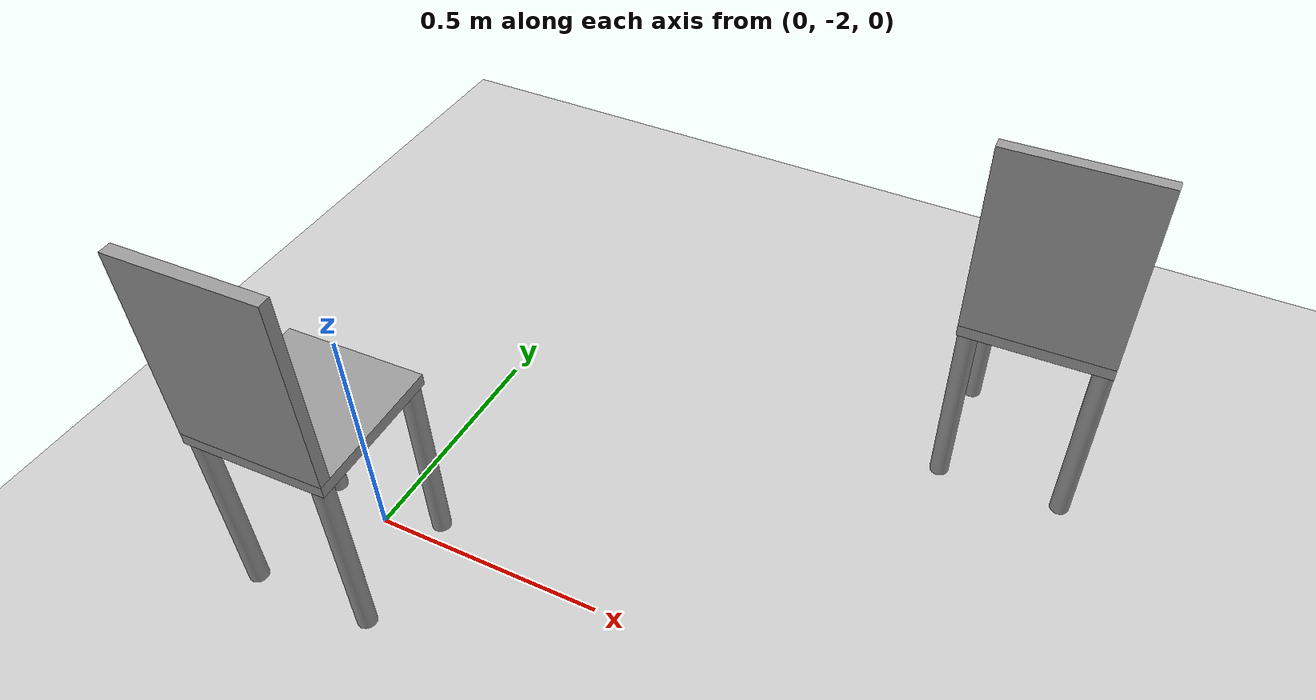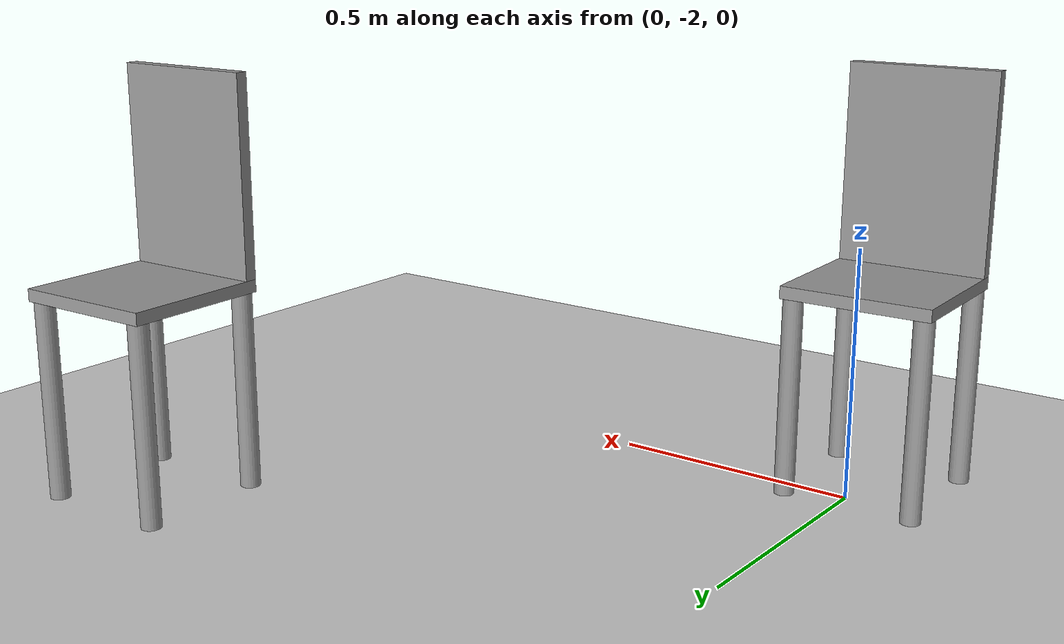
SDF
<sdf version="1.6">
 <world name="default">
  <model name="ground_plane">
   <static>1</static>
   <link name="link">
    <collision name="collision">
     <geometry><plane><normal>0 0 1</normal><size>100 100</size></plane></geometry>
     <surface><friction><ode><mu>100</mu><mu2>50</mu2></ode></friction></surface>
    </collision>
    <visual name="visual">
     <cast_shadows>0</cast_shadows>
     <geometry><plane><normal>0 0 1</normal><size>100 100</size></plane></geometry>
     <material>
      <script><uri>file://media/materials/scripts/gazebo.material</uri><name>Gazebo/Grey</name></script>
     </material>
    </visual>
   </link>
  </model>
  <model name="myChair_clone_clone_0">
   <link name="link_0">
    <pose>0.022917 -0 0.0914 0 -0 0</pose>
    <inertial>
     <mass>1</mass>
     <inertia>
      <ixx>0.166667</ixx>
      <ixy>0</ixy>
      <ixz>0</ixz>
      <iyy>0.166667</iyy>
      <iyz>0</iyz>
      <izz>0.166667</izz>
     </inertia>
    </inertial>
    <visual name="visual">
     <geometry><box><size>0.3 0.3 0.025</size></box></geometry>
     <material>
      <lighting>1</lighting>
      <script><uri>file://media/materials/scripts/gazebo.material</uri><name>Gazebo/Grey</name></script>
      <ambient>0.3 0.3 0.3 1</ambient>
      <diffuse>0.7 0.7 0.7 1</diffuse>
      <specular>0.01 0.01 0.01 1</specular>
      <emissive>0 0 0 1</emissive>
      <shader type="vertex"><normal_map>__default__</normal_map></shader>
     </material>
    </visual>
    <collision name="collision">
     <geometry><box><size>0.3 0.3 0.025</size></box></geometry>
     <surface>
      <friction>
       <ode><mu>1</mu><mu2>1</mu2><fdir1>0 0 0</fdir1><slip1>0</slip1><slip2>0</slip2></ode>
       <torsional>
        <coefficient>1</coefficient>
        <patch_radius>0</patch_radius>
        <surface_radius>0</surface_radius>
        <use_patch_radius>1</use_patch_radius>
        <ode><slip>0</slip></ode>
       </torsional>
      </friction>
      <bounce><restitution_coefficient>0</restitution_coefficient><threshold>1e+06</threshold></bounce>
      <contact>
       <collide_without_contact>0</collide_without_contact>
       <collide_without_contact_bitmask>1</collide_without_contact_bitmask>
       <collide_bitmask>1</collide_bitmask>
       <ode>
        <soft_cfm>0</soft_cfm>
        <soft_erp>0.2</soft_erp>
        <kp>1e+13</kp>
        <kd>1</kd>
        <max_vel>0.01</max_vel>
        <min_depth>0</min_depth>
       </ode>
       <bullet>
        <split_impulse>1</split_impulse>
        <split_impulse_penetration_threshold>-0.01</split_impulse_penetration_threshold>
        <soft_cfm>0</soft_cfm>
        <soft_erp>0.2</soft_erp>
        <kp>1e+13</kp>
        <kd>1</kd>
       </bullet>
      </contact>
     </surface>
    </collision>
   </link>
   <link name="link_1">
    <pose>-0.107083 -0.13 -0.11875 0 -0 0</pose>
    <inertial>
     <mass>1</mass>
     <inertia><ixx>0.145833</ixx><ixy>0</ixy><ixz>0</ixz><iyy>0.145833</iyy><iyz>0</iyz><izz>0.125</izz></inertia>
    </inertial>
    <visual name="visual">
     <geometry><cylinder><radius>0.02</radius><length>0.4</length></cylinder></geometry>
     <material>
      <lighting>1</lighting>
      <script><uri>file://media/materials/scripts/gazebo.material</uri><name>Gazebo/Grey</name></script>
      <ambient>0.3 0.3 0.3 1</ambient>
      <diffuse>0.7 0.7 0.7 1</diffuse>
      <specular>0.01 0.01 0.01 1</specular>
      <emissive>0 0 0 1</emissive>
      <shader type="vertex"><normal_map>__default__</normal_map></shader>
     </material>
    </visual>
    <collision name="collision">
     <geometry><cylinder><radius>0.02</radius><length>0.4</length></cylinder></geometry>
     <surface>
      <friction>
       <ode><mu>1</mu><mu2>1</mu2><fdir1>0 0 0</fdir1><slip1>0</slip1><slip2>0</slip2></ode>
       <torsional>
        <coefficient>1</coefficient>
        <patch_radius>0</patch_radius>
        <surface_radius>0</surface_radius>
        <use_patch_radius>1</use_patch_radius>
        <ode><slip>0</slip></ode>
       </torsional>
      </friction>
      <bounce><restitution_coefficient>0</restitution_coefficient><threshold>1e+06</threshold></bounce>
      <contact>
       <collide_without_contact>0</collide_without_contact>
       <collide_without_contact_bitmask>1</collide_without_contact_bitmask>
       <collide_bitmask>1</collide_bitmask>
       <ode>
        <soft_cfm>0</soft_cfm>
        <soft_erp>0.2</soft_erp>
        <kp>1e+13</kp>
        <kd>1</kd>
        <max_vel>0.01</max_vel>
        <min_depth>0</min_depth>
       </ode>
       <bullet>
        <split_impulse>1</split_impulse>
        <split_impulse_penetration_threshold>-0.01</split_impulse_penetration_threshold>
        <soft_cfm>0</soft_cfm>
        <soft_erp>0.2</soft_erp>
        <kp>1e+13</kp>
        <kd>1</kd>
       </bullet>
      </contact>
     </surface>
    </collision>
   </link>
   <link name="link_1_clone">
    <pose>-0.107083 0.13 -0.11875 0 -0 0</pose>
    <inertial>
     <mass>1</mass>
     <inertia><ixx>0.145833</ixx><ixy>0</ixy><ixz>0</ixz><iyy>0.145833</iyy><iyz>0</iyz><izz>0.125</izz></inertia>
    </inertial>
    <visual name="visual">
     <geometry><cylinder><radius>0.02</radius><length>0.4</length></cylinder></geometry>
     <material>
      <lighting>1</lighting>
      <script><uri>file://media/materials/scripts/gazebo.material</uri><name>Gazebo/Grey</name></script>
      <ambient>0.3 0.3 0.3 1</ambient>
      <diffuse>0.7 0.7 0.7 1</diffuse>
      <specular>0.01 0.01 0.01 1</specular>
      <emissive>0 0 0 1</emissive>
      <shader type="vertex"><normal_map>__default__</normal_map></shader>
     </material>
    </visual>
    <collision name="collision">
     <geometry><cylinder><radius>0.02</radius><length>0.4</length></cylinder></geometry>
     <surface>
      <friction>
       <ode><mu>1</mu><mu2>1</mu2><fdir1>0 0 0</fdir1><slip1>0</slip1><slip2>0</slip2></ode>
       <torsional>
        <coefficient>1</coefficient>
        <patch_radius>0</patch_radius>
        <surface_radius>0</surface_radius>
        <use_patch_radius>1</use_patch_radius>
        <ode><slip>0</slip></ode>
       </torsional>
      </friction>
      <bounce><restitution_coefficient>0</restitution_coefficient><threshold>1e+06</threshold></bounce>
      <contact>
       <collide_without_contact>0</collide_without_contact>
       <collide_without_contact_bitmask>1</collide_without_contact_bitmask>
       <collide_bitmask>1</collide_bitmask>
       <ode>
        <soft_cfm>0</soft_cfm>
        <soft_erp>0.2</soft_erp>
        <kp>1e+13</kp>
        <kd>1</kd>
        <max_vel>0.01</max_vel>
        <min_depth>0</min_depth>
       </ode>
       <bullet>
        <split_impulse>1</split_impulse>
        <split_impulse_penetration_threshold>-0.01</split_impulse_penetration_threshold>
        <soft_cfm>0</soft_cfm>
        <soft_erp>0.2</soft_erp>
        <kp>1e+13</kp>
        <kd>1</kd>
       </bullet>
      </contact>
     </surface>
    </collision>
   </link>
   <link name="link_1_clone_0">
    <pose>0.152917 -0.13 -0.11875 0 -0 0</pose>
    <inertial>
     <mass>1</mass>
     <inertia><ixx>0.145833</ixx><ixy>0</ixy><ixz>0</ixz><iyy>0.145833</iyy><iyz>0</iyz><izz>0.125</izz></inertia>
    </inertial>
    <visual name="visual">
     <geometry><cylinder><radius>0.02</radius><length>0.4</length></cylinder></geometry>
     <material>
      <lighting>1</lighting>
      <script><uri>file://media/materials/scripts/gazebo.material</uri><name>Gazebo/Grey</name></script>
      <ambient>0.3 0.3 0.3 1</ambient>
      <diffuse>0.7 0.7 0.7 1</diffuse>
      <specular>0.01 0.01 0.01 1</specular>
      <emissive>0 0 0 1</emissive>
      <shader type="vertex"><normal_map>__default__</normal_map></shader>
     </material>
    </visual>
    <collision name="collision">
     <geometry><cylinder><radius>0.02</radius><length>0.4</length></cylinder></geometry>
     <surface>
      <friction>
       <ode><mu>1</mu><mu2>1</mu2><fdir1>0 0 0</fdir1><slip1>0</slip1><slip2>0</slip2></ode>
       <torsional>
        <coefficient>1</coefficient>
        <patch_radius>0</patch_radius>
        <surface_radius>0</surface_radius>
        <use_patch_radius>1</use_patch_radius>
        <ode><slip>0</slip></ode>
       </torsional>
      </friction>
      <bounce><restitution_coefficient>0</restitution_coefficient><threshold>1e+06</threshold></bounce>
      <contact>
       <collide_without_contact>0</collide_without_contact>
       <collide_without_contact_bitmask>1</collide_without_contact_bitmask>
       <collide_bitmask>1</collide_bitmask>
       <ode>
        <soft_cfm>0</soft_cfm>
        <soft_erp>0.2</soft_erp>
        <kp>1e+13</kp>
        <kd>1</kd>
        <max_vel>0.01</max_vel>
        <min_depth>0</min_depth>
       </ode>
       <bullet>
        <split_impulse>1</split_impulse>
        <split_impulse_penetration_threshold>-0.01</split_impulse_penetration_threshold>
        <soft_cfm>0</soft_cfm>
        <soft_erp>0.2</soft_erp>
        <kp>1e+13</kp>
        <kd>1</kd>
       </bullet>
      </contact>
     </surface>
    </collision>
   </link>
   <link name="link_1_clone_1">
    <pose>0.152917 0.13 -0.11875 0 -0 0</pose>
    <inertial>
     <mass>1</mass>
     <inertia><ixx>0.145833</ixx><ixy>0</ixy><ixz>0</ixz><iyy>0.145833</iyy><iyz>0</iyz><izz>0.125</izz></inertia>
    </inertial>
    <visual name="visual">
     <geometry><cylinder><radius>0.02</radius><length>0.4</length></cylinder></geometry>
     <material>
      <lighting>1</lighting>
      <script><uri>file://media/materials/scripts/gazebo.material</uri><name>Gazebo/Grey</name></script>
      <ambient>0.3 0.3 0.3 1</ambient>
      <diffuse>0.7 0.7 0.7 1</diffuse>
      <specular>0.01 0.01 0.01 1</specular>
      <emissive>0 0 0 1</emissive>
      <shader type="vertex"><normal_map>__default__</normal_map></shader>
     </material>
    </visual>
    <collision name="collision">
     <geometry><cylinder><radius>0.02</radius><length>0.4</length></cylinder></geometry>
     <surface>
      <friction>
       <ode><mu>1</mu><mu2>1</mu2><fdir1>0 0 0</fdir1><slip1>0</slip1><slip2>0</slip2></ode>
       <torsional>
        <coefficient>1</coefficient>
        <patch_radius>0</patch_radius>
        <surface_radius>0</surface_radius>
        <use_patch_radius>1</use_patch_radius>
        <ode><slip>0</slip></ode>
       </torsional>
      </friction>
      <bounce><restitution_coefficient>0</restitution_coefficient><threshold>1e+06</threshold></bounce>
      <contact>
       <collide_without_contact>0</collide_without_contact>
       <collide_without_contact_bitmask>1</collide_without_contact_bitmask>
       <collide_bitmask>1</collide_bitmask>
       <ode>
        <soft_cfm>0</soft_cfm>
        <soft_erp>0.2</soft_erp>
        <kp>1e+13</kp>
        <kd>1</kd>
        <max_vel>0.01</max_vel>
        <min_depth>0</min_depth>
       </ode>
       <bullet>
        <split_impulse>1</split_impulse>
        <split_impulse_penetration_threshold>-0.01</split_impulse_penetration_threshold>
        <soft_cfm>0</soft_cfm>
        <soft_erp>0.2</soft_erp>
        <kp>1e+13</kp>
        <kd>1</kd>
       </bullet>
      </contact>
     </surface>
    </collision>
   </link>
   <link name="link_2">
    <pose>-0.114583 0 0.303495 0 -0 0</pose>
    <inertial>
     <mass>1</mass>
     <inertia>
      <ixx>0.166667</ixx>
      <ixy>0</ixy>
      <ixz>0</ixz>
      <iyy>0.166667</iyy>
      <iyz>0</iyz>
      <izz>0.166667</izz>
     </inertia>
    </inertial>
    <visual name="visual">
     <geometry><box><size>0.025 0.3 0.4</size></box></geometry>
     <material>
      <lighting>1</lighting>
      <script><uri>file://media/materials/scripts/gazebo.material</uri><name>Gazebo/Grey</name></script>
      <ambient>0.3 0.3 0.3 1</ambient>
      <diffuse>0.7 0.7 0.7 1</diffuse>
      <specular>0.01 0.01 0.01 1</specular>
      <emissive>0 0 0 1</emissive>
      <shader type="vertex"><normal_map>__default__</normal_map></shader>
     </material>
    </visual>
    <collision name="collision">
     <geometry><box><size>0.025 0.3 0.4</size></box></geometry>
     <surface>
      <friction>
       <ode><mu>1</mu><mu2>1</mu2><fdir1>0 0 0</fdir1><slip1>0</slip1><slip2>0</slip2></ode>
       <torsional>
        <coefficient>1</coefficient>
        <patch_radius>0</patch_radius>
        <surface_radius>0</surface_radius>
        <use_patch_radius>1</use_patch_radius>
        <ode><slip>0</slip></ode>
       </torsional>
      </friction>
      <bounce><restitution_coefficient>0</restitution_coefficient><threshold>1e+06</threshold></bounce>
      <contact>
       <collide_without_contact>0</collide_without_contact>
       <collide_without_contact_bitmask>1</collide_without_contact_bitmask>
       <collide_bitmask>1</collide_bitmask>
       <ode>
        <soft_cfm>0</soft_cfm>
        <soft_erp>0.2</soft_erp>
        <kp>1e+13</kp>
        <kd>1</kd>
        <max_vel>0.01</max_vel>
        <min_depth>0</min_depth>
       </ode>
       <bullet>
        <split_impulse>1</split_impulse>
        <split_impulse_penetration_threshold>-0.01</split_impulse_penetration_threshold>
        <soft_cfm>0</soft_cfm>
        <soft_erp>0.2</soft_erp>
        <kp>1e+13</kp>
        <kd>1</kd>
       </bullet>
      </contact>
     </surface>
    </collision>
   </link>
   <joint name="link_0_JOINT_0" type="fixed">
    <parent>link_0</parent>
    <child>link_1</child>
    <physics>
     <ode><limit><cfm>0</cfm><erp>0.2</erp></limit><suspension><cfm>0</cfm><erp>0.2</erp></suspension></ode>
    </physics>
   </joint>
   <joint name="link_0_JOINT_1" type="fixed">
    <parent>link_0</parent>
    <child>link_1_clone</child>
    <physics>
     <ode><limit><cfm>0</cfm><erp>0.2</erp></limit><suspension><cfm>0</cfm><erp>0.2</erp></suspension></ode>
    </physics>
   </joint>
   <joint name="link_0_JOINT_2" type="fixed">
    <parent>link_0</parent>
    <child>link_1_clone_0</child>
    <physics>
     <ode><limit><cfm>0</cfm><erp>0.2</erp></limit><suspension><cfm>0</cfm><erp>0.2</erp></suspension></ode>
    </physics>
   </joint>
   <joint name="link_0_JOINT_3" type="fixed">
    <parent>link_0</parent>
    <child>link_1_clone_1</child>
    <physics>
     <ode><limit><cfm>0</cfm><erp>0.2</erp></limit><suspension><cfm>0</cfm><erp>0.2</erp></suspension></ode>
    </physics>
   </joint>
   <joint name="link_0_JOINT_5" type="revolute">
    <parent>link_0</parent>
    <child>link_2</child>
    <axis>
     <xyz>1 0 0</xyz>
     <use_parent_model_frame>0</use_parent_model_frame>
     <limit>
      <lower>-1.79769e+308</lower>
      <upper>1.79769e+308</upper>
      <effort>-1</effort>
      <velocity>-1</velocity>
     </limit>
     <dynamics>
      <spring_reference>0</spring_reference>
      <spring_stiffness>0</spring_stiffness>
      <damping>0</damping>
      <friction>0</friction>
     </dynamics>
    </axis>
    <physics>
     <ode><limit><cfm>0</cfm><erp>0.2</erp></limit><suspension><cfm>0</cfm><erp>0.2</erp></suspension></ode>
    </physics>
   </joint>
   <static>0</static>
   <pose>-0.016052 -2.11118 0.318743 1e-06 -2e-06 1.60032</pose>
  </model>
  <model name="myChair_clone_clone_1">
   <link name="link_0">
    <pose>0.022917 -0 0.0914 0 -0 0</pose>
    <inertial>
     <mass>1</mass>
     <inertia>
      <ixx>0.166667</ixx>
      <ixy>0</ixy>
      <ixz>0</ixz>
      <iyy>0.166667</iyy>
      <iyz>0</iyz>
      <izz>0.166667</izz>
     </inertia>
    </inertial>
    <visual name="visual">
     <geometry><box><size>0.3 0.3 0.025</size></box></geometry>
     <material>
      <lighting>1</lighting>
      <script><uri>file://media/materials/scripts/gazebo.material</uri><name>Gazebo/Grey</name></script>
      <ambient>0.3 0.3 0.3 1</ambient>
      <diffuse>0.7 0.7 0.7 1</diffuse>
      <specular>0.01 0.01 0.01 1</specular>
      <emissive>0 0 0 1</emissive>
      <shader type="vertex"><normal_map>__default__</normal_map></shader>
     </material>
    </visual>
    <collision name="collision">
     <geometry><box><size>0.3 0.3 0.025</size></box></geometry>
     <surface>
      <friction>
       <ode><mu>1</mu><mu2>1</mu2><fdir1>0 0 0</fdir1><slip1>0</slip1><slip2>0</slip2></ode>
       <torsional>
        <coefficient>1</coefficient>
        <patch_radius>0</patch_radius>
        <surface_radius>0</surface_radius>
        <use_patch_radius>1</use_patch_radius>
        <ode><slip>0</slip></ode>
       </torsional>
      </friction>
      <bounce><restitution_coefficient>0</restitution_coefficient><threshold>1e+06</threshold></bounce>
      <contact>
       <collide_without_contact>0</collide_without_contact>
       <collide_without_contact_bitmask>1</collide_without_contact_bitmask>
       <collide_bitmask>1</collide_bitmask>
       <ode>
        <soft_cfm>0</soft_cfm>
        <soft_erp>0.2</soft_erp>
        <kp>1e+13</kp>
        <kd>1</kd>
        <max_vel>0.01</max_vel>
        <min_depth>0</min_depth>
       </ode>
       <bullet>
        <split_impulse>1</split_impulse>
        <split_impulse_penetration_threshold>-0.01</split_impulse_penetration_threshold>
        <soft_cfm>0</soft_cfm>
        <soft_erp>0.2</soft_erp>
        <kp>1e+13</kp>
        <kd>1</kd>
       </bullet>
      </contact>
     </surface>
    </collision>
   </link>
   <link name="link_1">
    <pose>-0.107083 -0.13 -0.11875 0 -0 0</pose>
    <inertial>
     <mass>1</mass>
     <inertia><ixx>0.145833</ixx><ixy>0</ixy><ixz>0</ixz><iyy>0.145833</iyy><iyz>0</iyz><izz>0.125</izz></inertia>
    </inertial>
    <visual name="visual">
     <geometry><cylinder><radius>0.02</radius><length>0.4</length></cylinder></geometry>
     <material>
      <lighting>1</lighting>
      <script><uri>file://media/materials/scripts/gazebo.material</uri><name>Gazebo/Grey</name></script>
      <ambient>0.3 0.3 0.3 1</ambient>
      <diffuse>0.7 0.7 0.7 1</diffuse>
      <specular>0.01 0.01 0.01 1</specular>
      <emissive>0 0 0 1</emissive>
      <shader type="vertex"><normal_map>__default__</normal_map></shader>
     </material>
    </visual>
    <collision name="collision">
     <geometry><cylinder><radius>0.02</radius><length>0.4</length></cylinder></geometry>
     <surface>
      <friction>
       <ode><mu>1</mu><mu2>1</mu2><fdir1>0 0 0</fdir1><slip1>0</slip1><slip2>0</slip2></ode>
       <torsional>
        <coefficient>1</coefficient>
        <patch_radius>0</patch_radius>
        <surface_radius>0</surface_radius>
        <use_patch_radius>1</use_patch_radius>
        <ode><slip>0</slip></ode>
       </torsional>
      </friction>
      <bounce><restitution_coefficient>0</restitution_coefficient><threshold>1e+06</threshold></bounce>
      <contact>
       <collide_without_contact>0</collide_without_contact>
       <collide_without_contact_bitmask>1</collide_without_contact_bitmask>
       <collide_bitmask>1</collide_bitmask>
       <ode>
        <soft_cfm>0</soft_cfm>
        <soft_erp>0.2</soft_erp>
        <kp>1e+13</kp>
        <kd>1</kd>
        <max_vel>0.01</max_vel>
        <min_depth>0</min_depth>
       </ode>
       <bullet>
        <split_impulse>1</split_impulse>
        <split_impulse_penetration_threshold>-0.01</split_impulse_penetration_threshold>
        <soft_cfm>0</soft_cfm>
        <soft_erp>0.2</soft_erp>
        <kp>1e+13</kp>
        <kd>1</kd>
       </bullet>
      </contact>
     </surface>
    </collision>
   </link>
   <link name="link_1_clone">
    <pose>-0.107083 0.13 -0.11875 0 -0 0</pose>
    <inertial>
     <mass>1</mass>
     <inertia><ixx>0.145833</ixx><ixy>0</ixy><ixz>0</ixz><iyy>0.145833</iyy><iyz>0</iyz><izz>0.125</izz></inertia>
    </inertial>
    <visual name="visual">
     <geometry><cylinder><radius>0.02</radius><length>0.4</length></cylinder></geometry>
     <material>
      <lighting>1</lighting>
      <script><uri>file://media/materials/scripts/gazebo.material</uri><name>Gazebo/Grey</name></script>
      <ambient>0.3 0.3 0.3 1</ambient>
      <diffuse>0.7 0.7 0.7 1</diffuse>
      <specular>0.01 0.01 0.01 1</specular>
      <emissive>0 0 0 1</emissive>
      <shader type="vertex"><normal_map>__default__</normal_map></shader>
     </material>
    </visual>
    <collision name="collision">
     <geometry><cylinder><radius>0.02</radius><length>0.4</length></cylinder></geometry>
     <surface>
      <friction>
       <ode><mu>1</mu><mu2>1</mu2><fdir1>0 0 0</fdir1><slip1>0</slip1><slip2>0</slip2></ode>
       <torsional>
        <coefficient>1</coefficient>
        <patch_radius>0</patch_radius>
        <surface_radius>0</surface_radius>
        <use_patch_radius>1</use_patch_radius>
        <ode><slip>0</slip></ode>
       </torsional>
      </friction>
      <bounce><restitution_coefficient>0</restitution_coefficient><threshold>1e+06</threshold></bounce>
      <contact>
       <collide_without_contact>0</collide_without_contact>
       <collide_without_contact_bitmask>1</collide_without_contact_bitmask>
       <collide_bitmask>1</collide_bitmask>
       <ode>
        <soft_cfm>0</soft_cfm>
        <soft_erp>0.2</soft_erp>
        <kp>1e+13</kp>
        <kd>1</kd>
        <max_vel>0.01</max_vel>
        <min_depth>0</min_depth>
       </ode>
       <bullet>
        <split_impulse>1</split_impulse>
        <split_impulse_penetration_threshold>-0.01</split_impulse_penetration_threshold>
        <soft_cfm>0</soft_cfm>
        <soft_erp>0.2</soft_erp>
        <kp>1e+13</kp>
        <kd>1</kd>
       </bullet>
      </contact>
     </surface>
    </collision>
   </link>
   <link name="link_1_clone_0">
    <pose>0.152917 -0.13 -0.11875 0 -0 0</pose>
    <inertial>
     <mass>1</mass>
     <inertia><ixx>0.145833</ixx><ixy>0</ixy><ixz>0</ixz><iyy>0.145833</iyy><iyz>0</iyz><izz>0.125</izz></inertia>
    </inertial>
    <visual name="visual">
     <geometry><cylinder><radius>0.02</radius><length>0.4</length></cylinder></geometry>
     <material>
      <lighting>1</lighting>
      <script><uri>file://media/materials/scripts/gazebo.material</uri><name>Gazebo/Grey</name></script>
      <ambient>0.3 0.3 0.3 1</ambient>
      <diffuse>0.7 0.7 0.7 1</diffuse>
      <specular>0.01 0.01 0.01 1</specular>
      <emissive>0 0 0 1</emissive>
      <shader type="vertex"><normal_map>__default__</normal_map></shader>
     </material>
    </visual>
    <collision name="collision">
     <geometry><cylinder><radius>0.02</radius><length>0.4</length></cylinder></geometry>
     <surface>
      <friction>
       <ode><mu>1</mu><mu2>1</mu2><fdir1>0 0 0</fdir1><slip1>0</slip1><slip2>0</slip2></ode>
       <torsional>
        <coefficient>1</coefficient>
        <patch_radius>0</patch_radius>
        <surface_radius>0</surface_radius>
        <use_patch_radius>1</use_patch_radius>
        <ode><slip>0</slip></ode>
       </torsional>
      </friction>
      <bounce><restitution_coefficient>0</restitution_coefficient><threshold>1e+06</threshold></bounce>
      <contact>
       <collide_without_contact>0</collide_without_contact>
       <collide_without_contact_bitmask>1</collide_without_contact_bitmask>
       <collide_bitmask>1</collide_bitmask>
       <ode>
        <soft_cfm>0</soft_cfm>
        <soft_erp>0.2</soft_erp>
        <kp>1e+13</kp>
        <kd>1</kd>
        <max_vel>0.01</max_vel>
        <min_depth>0</min_depth>
       </ode>
       <bullet>
        <split_impulse>1</split_impulse>
        <split_impulse_penetration_threshold>-0.01</split_impulse_penetration_threshold>
        <soft_cfm>0</soft_cfm>
        <soft_erp>0.2</soft_erp>
        <kp>1e+13</kp>
        <kd>1</kd>
       </bullet>
      </contact>
     </surface>
    </collision>
   </link>
   <link name="link_1_clone_1">
    <pose>0.152917 0.13 -0.11875 0 -0 0</pose>
    <inertial>
     <mass>1</mass>
     <inertia><ixx>0.145833</ixx><ixy>0</ixy><ixz>0</ixz><iyy>0.145833</iyy><iyz>0</iyz><izz>0.125</izz></inertia>
    </inertial>
    <visual name="visual">
     <geometry><cylinder><radius>0.02</radius><length>0.4</length></cylinder></geometry>
     <material>
      <lighting>1</lighting>
      <script><uri>file://media/materials/scripts/gazebo.material</uri><name>Gazebo/Grey</name></script>
      <ambient>0.3 0.3 0.3 1</ambient>
      <diffuse>0.7 0.7 0.7 1</diffuse>
      <specular>0.01 0.01 0.01 1</specular>
      <emissive>0 0 0 1</emissive>
      <shader type="vertex"><normal_map>__default__</normal_map></shader>
     </material>
    </visual>
    <collision name="collision">
     <geometry><cylinder><radius>0.02</radius><length>0.4</length></cylinder></geometry>
     <surface>
      <friction>
       <ode><mu>1</mu><mu2>1</mu2><fdir1>0 0 0</fdir1><slip1>0</slip1><slip2>0</slip2></ode>
       <torsional>
        <coefficient>1</coefficient>
        <patch_radius>0</patch_radius>
        <surface_radius>0</surface_radius>
        <use_patch_radius>1</use_patch_radius>
        <ode><slip>0</slip></ode>
       </torsional>
      </friction>
      <bounce><restitution_coefficient>0</restitution_coefficient><threshold>1e+06</threshold></bounce>
      <contact>
       <collide_without_contact>0</collide_without_contact>
       <collide_without_contact_bitmask>1</collide_without_contact_bitmask>
       <collide_bitmask>1</collide_bitmask>
       <ode>
        <soft_cfm>0</soft_cfm>
        <soft_erp>0.2</soft_erp>
        <kp>1e+13</kp>
        <kd>1</kd>
        <max_vel>0.01</max_vel>
        <min_depth>0</min_depth>
       </ode>
       <bullet>
        <split_impulse>1</split_impulse>
        <split_impulse_penetration_threshold>-0.01</split_impulse_penetration_threshold>
        <soft_cfm>0</soft_cfm>
        <soft_erp>0.2</soft_erp>
        <kp>1e+13</kp>
        <kd>1</kd>
       </bullet>
      </contact>
     </surface>
    </collision>
   </link>
   <link name="link_2">
    <pose>-0.114583 0 0.303495 0 -0 0</pose>
    <inertial>
     <mass>1</mass>
     <inertia>
      <ixx>0.166667</ixx>
      <ixy>0</ixy>
      <ixz>0</ixz>
      <iyy>0.166667</iyy>
      <iyz>0</iyz>
      <izz>0.166667</izz>
     </inertia>
    </inertial>
    <visual name="visual">
     <geometry><box><size>0.025 0.3 0.4</size></box></geometry>
     <material>
      <lighting>1</lighting>
      <script><uri>file://media/materials/scripts/gazebo.material</uri><name>Gazebo/Grey</name></script>
      <ambient>0.3 0.3 0.3 1</ambient>
      <diffuse>0.7 0.7 0.7 1</diffuse>
      <specular>0.01 0.01 0.01 1</specular>
      <emissive>0 0 0 1</emissive>
      <shader type="vertex"><normal_map>__default__</normal_map></shader>
     </material>
    </visual>
    <collision name="collision">
     <geometry><box><size>0.025 0.3 0.4</size></box></geometry>
     <surface>
      <friction>
       <ode><mu>1</mu><mu2>1</mu2><fdir1>0 0 0</fdir1><slip1>0</slip1><slip2>0</slip2></ode>
       <torsional>
        <coefficient>1</coefficient>
        <patch_radius>0</patch_radius>
        <surface_radius>0</surface_radius>
        <use_patch_radius>1</use_patch_radius>
        <ode><slip>0</slip></ode>
       </torsional>
      </friction>
      <bounce><restitution_coefficient>0</restitution_coefficient><threshold>1e+06</threshold></bounce>
      <contact>
       <collide_without_contact>0</collide_without_contact>
       <collide_without_contact_bitmask>1</collide_without_contact_bitmask>
       <collide_bitmask>1</collide_bitmask>
       <ode>
        <soft_cfm>0</soft_cfm>
        <soft_erp>0.2</soft_erp>
        <kp>1e+13</kp>
        <kd>1</kd>
        <max_vel>0.01</max_vel>
        <min_depth>0</min_depth>
       </ode>
       <bullet>
        <split_impulse>1</split_impulse>
        <split_impulse_penetration_threshold>-0.01</split_impulse_penetration_threshold>
        <soft_cfm>0</soft_cfm>
        <soft_erp>0.2</soft_erp>
        <kp>1e+13</kp>
        <kd>1</kd>
       </bullet>
      </contact>
     </surface>
    </collision>
   </link>
   <joint name="link_0_JOINT_0" type="fixed">
    <parent>link_0</parent>
    <child>link_1</child>
    <physics>
     <ode><limit><cfm>0</cfm><erp>0.2</erp></limit><suspension><cfm>0</cfm><erp>0.2</erp></suspension></ode>
    </physics>
   </joint>
   <joint name="link_0_JOINT_1" type="fixed">
    <parent>link_0</parent>
    <child>link_1_clone</child>
    <physics>
     <ode><limit><cfm>0</cfm><erp>0.2</erp></limit><suspension><cfm>0</cfm><erp>0.2</erp></suspension></ode>
    </physics>
   </joint>
   <joint name="link_0_JOINT_2" type="fixed">
    <parent>link_0</parent>
    <child>link_1_clone_0</child>
    <physics>
     <ode><limit><cfm>0</cfm><erp>0.2</erp></limit><suspension><cfm>0</cfm><erp>0.2</erp></suspension></ode>
    </physics>
   </joint>
   <joint name="link_0_JOINT_3" type="fixed">
    <parent>link_0</parent>
    <child>link_1_clone_1</child>
    <physics>
     <ode><limit><cfm>0</cfm><erp>0.2</erp></limit><suspension><cfm>0</cfm><erp>0.2</erp></suspension></ode>
    </physics>
   </joint>
   <joint name="link_0_JOINT_5" type="revolute">
    <parent>link_0</parent>
    <child>link_2</child>
    <axis>
     <xyz>1 0 0</xyz>
     <use_parent_model_frame>0</use_parent_model_frame>
     <limit>
      <lower>-1.79769e+308</lower>
      <upper>1.79769e+308</upper>
      <effort>-1</effort>
      <velocity>-1</velocity>
     </limit>
     <dynamics>
      <spring_reference>0</spring_reference>
      <spring_stiffness>0</spring_stiffness>
      <damping>0</damping>
      <friction>0</friction>
     </dynamics>
    </axis>
    <physics>
     <ode><limit><cfm>0</cfm><erp>0.2</erp></limit><suspension><cfm>0</cfm><erp>0.2</erp></suspension></ode>
    </physics>
   </joint>
   <static>0</static>
   <pose>1.10842 -1.23901 0.318743 1e-06 -2e-06 1.60031</pose>
  </model>
 </world>
</sdf>
